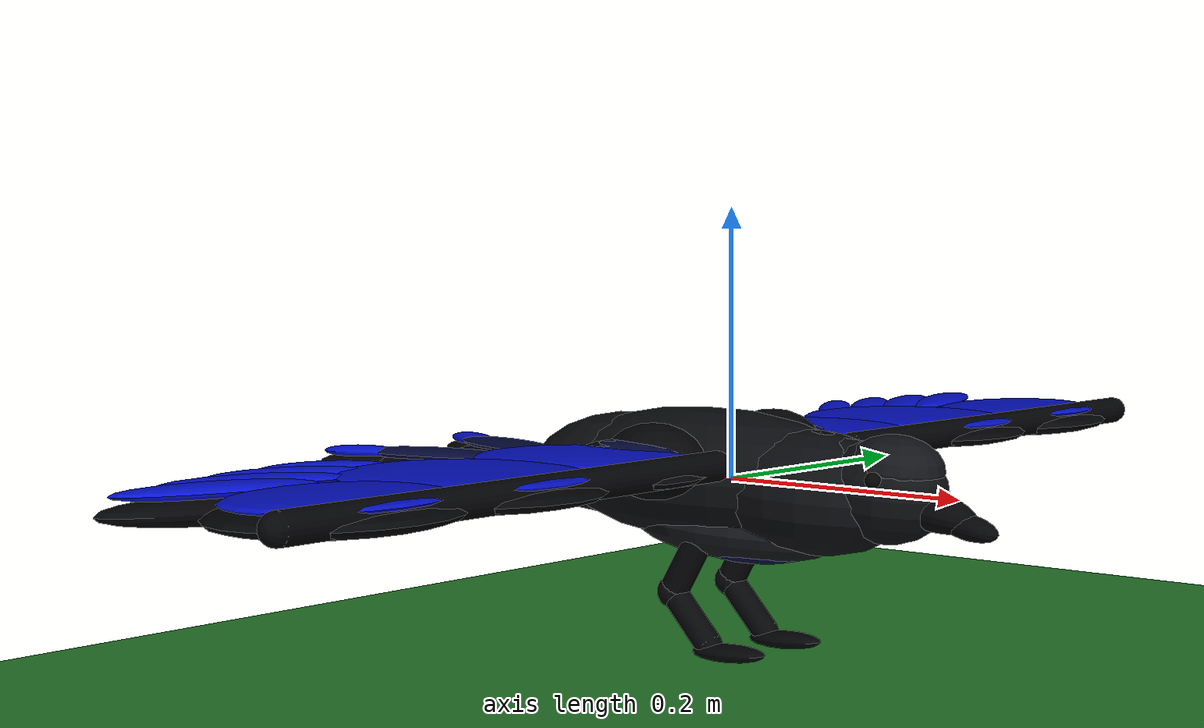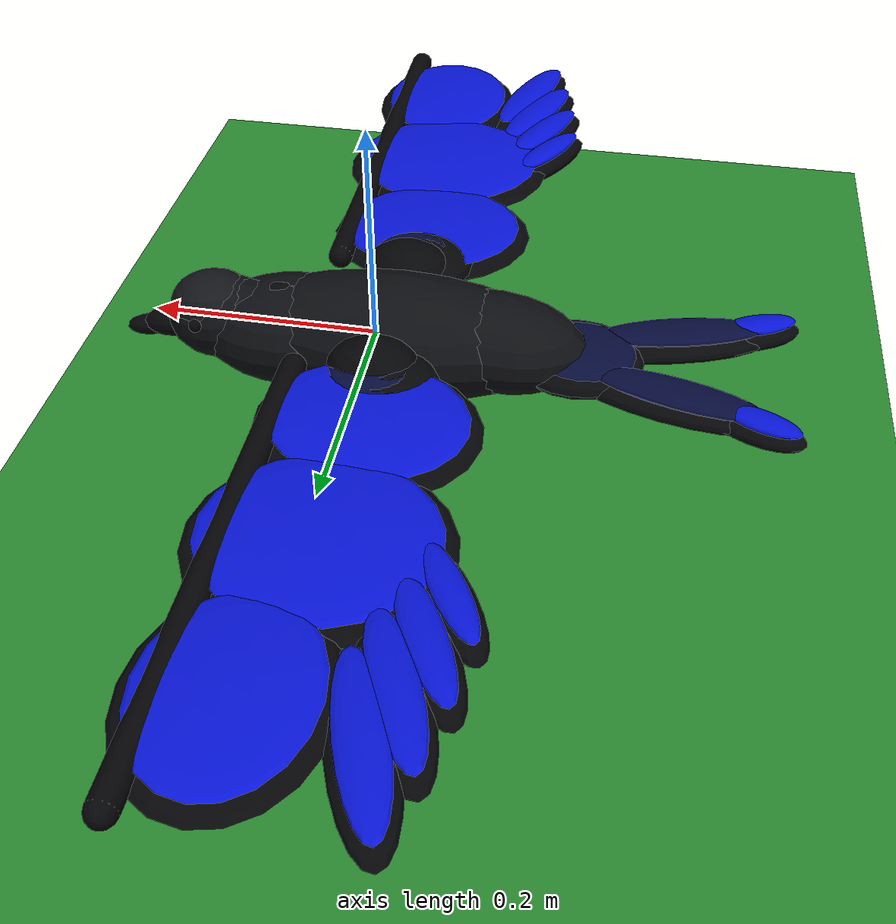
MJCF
<?xml version='1.0' encoding='UTF-8'?>
<mujoco model="bird_5dof_paper_scaled_tail_shoulders_crow_visual">
  <compiler angle="radian" autolimits="true" inertiafromgeom="false" balanceinertia="false"/>
  <!-- These atmospheric settings work when loaded directly in MuJoCo.
       In mjlab, set density, viscosity, wind, and has_fluid again in SimulationCfg. -->
  <option timestep="0.002" integrator="implicitfast" gravity="0 0 -9.81" density="1.225" viscosity="1.81e-5" wind="0 0 0"/>
  <statistic center="0 0 0" extent="1.15"/>
  <visual>
    <global azimuth="140" elevation="-20"/>
    <quality shadowsize="4096" offsamples="4"/>
    <headlight ambient="0.78 0.80 0.84" diffuse="0.92 0.94 0.98" specular="0.22 0.24 0.28"/>
    <rgba haze="0.94 0.97 1.00 1" fog="0.98 0.99 1.00 1"/>
  </visual>
  <asset>
    <texture name="sky" type="skybox" builtin="gradient" rgb1="0.48 0.76 1.00" rgb2="0.92 0.98 1.00" width="512" height="3072"/>
    <material name="base_green" rgba="0.10 0.48 0.32 1" specular="0.50" shininess="0.62"/>
    <material name="base_green_light" rgba="0.18 0.68 0.44 1" specular="0.48" shininess="0.58"/>
    <material name="wing_blue_shared" rgba="0.12 0.34 0.70 0.98" specular="0.48" shininess="0.60"/>
    <material name="purple_shared" rgba="0.035 0.090 0.220 1" specular="0.50" shininess="0.65"/>
    <material name="nose_dark" rgba="0.04 0.07 0.10 1" specular="0.52" shininess="0.70"/>
    <material name="invisible_visual" rgba="0 0 0 0" specular="0" shininess="0"/>
    <material name="vis_outline" rgba="0.010 0.012 0.020 1" specular="0.18" shininess="0.22"/>
    <material name="vis_body" rgba="0.045 0.050 0.062 1" specular="0.25" shininess="0.32"/>
    <material name="vis_body_soft" rgba="0.070 0.075 0.090 1" specular="0.22" shininess="0.28"/>
    <material name="vis_blue" rgba="0.025 0.075 0.820 1" specular="0.38" shininess="0.48"/>
    <material name="vis_blue_dark" rgba="0.020 0.040 0.220 1" specular="0.32" shininess="0.42"/>
    <material name="vis_leg" rgba="0.72 0.75 0.80 1" specular="0.18" shininess="0.24"/>
    <material name="vis_eye" rgba="0.003 0.003 0.006 1" specular="0.85" shininess="0.95"/>
    <material name="ground_green" rgba="0.16 0.52 0.18 1" specular="0.08" shininess="0.12"/>
  </asset>
  <default>
    <!-- All geoms are visual-only unless the collision class is used. -->
    <geom contype="0" conaffinity="0" friction="0.8 0.02 0.002" solref="0.004 1"/>
    <site rgba="0 0 0 0"/>
    <default class="collision">
      <geom contype="1" conaffinity="1" group="3" rgba="0 0 0 0"/>
    </default>
    <default class="flap_joint">
      <joint type="hinge" limited="true" range="-1.10 1.10" damping="0.004" armature="0.00008"/>
    </default>
    <default class="feather_joint">
      <joint type="hinge" limited="true" range="-0.70 0.70" damping="0.0015" armature="0.000015"/>
    </default>
    <default class="tail_joint">
      <joint type="hinge" limited="true" range="-0.6108652382 0.6108652382" damping="0.0020" armature="0.000020"/>
    </default>
  </default>
  <worldbody>
    <!-- Green ground plane. -->
    <geom name="ground" type="plane" pos="0 0 -0.150" size="8 8 0.10" material="ground_green" contype="1" conaffinity="1" friction="1.0 0.02 0.002"/>
    <light name="key_light" directional="true" pos="0 -2 3" dir="0.2 0.4 -1" diffuse="1.00 0.98 0.92" specular="0.30 0.30 0.30"/>
    <light name="fill_light" directional="true" pos="-1 2 2" dir="0.2 -0.5 -1" diffuse="0.60 0.75 1.00" specular="0.12 0.16 0.22"/>
    <body name="bird" pos="0 0 0">
      <freejoint name="root"/>
      <!-- Far third-person camera rigidly attached to the bird base. -->
      <camera name="bird_chase_camera" mode="fixed" pos="-0.95 0 0.30" xyaxes="0 -1 0  0.27 0 0.962860"/>
      <inertial pos="-0.010 0 0" mass="0.260" diaginertia="0.00072222 0.00308148 0.00322593"/>
      <!-- The only collision geom in the complete robot. -->
      <geom name="base_collision" class="collision" type="ellipsoid" pos="-0.005 0 0" size="0.155 0.072 0.058"/>
      <!-- Decorative primitive shell. All geoms below are visual-only. -->
      <!-- Simple aerodynamic ellipsoid for the main body. -->
      <geom name="base_body_aero" type="ellipsoid" pos="-0.005 0 0" size="0.155 0.072 0.058" material="invisible_visual" fluidshape="ellipsoid" fluidcoef="0.50 0.25 1.50 1.00 1.00" rgba="0 0 0 0" group="4"/>
      <!-- Decorative body details; no collision and no separate fluid model. -->
      <geom name="base_top" type="ellipsoid" pos="-0.015 0 0.026" size="0.098 0.061 0.031" material="invisible_visual" rgba="0 0 0 0" group="4"/>
      <geom name="belly_accent" type="ellipsoid" pos="-0.015 0 -0.027" size="0.082 0.050 0.018" material="invisible_visual" rgba="0 0 0 0" group="4"/>
      <geom name="nose" type="capsule" material="invisible_visual" fromto="0.115 0 0.003  0.198 0 -0.008" size="0.021" rgba="0 0 0 0" group="4"/>
      <!-- Invisible sites for IMU and debugging. -->
      <geom name="vis_body_core" type="ellipsoid" material="vis_body" contype="0" conaffinity="0" group="1" fluidshape="none" pos="-0.020 0 0.002" size="0.145 0.064 0.050"/>
      <geom name="vis_body_chest" type="ellipsoid" material="vis_body" contype="0" conaffinity="0" group="1" fluidshape="none" pos="0.072 0 -0.004" size="0.086 0.057 0.045" euler="0 0.05 0"/>
      <geom name="vis_body_rear" type="ellipsoid" material="vis_body" contype="0" conaffinity="0" group="1" fluidshape="none" pos="-0.105 0 0.005" size="0.082 0.052 0.039" euler="0 -0.10 0"/>
      <geom name="vis_body_belly" type="ellipsoid" material="vis_body_soft" contype="0" conaffinity="0" group="1" fluidshape="none" pos="0.005 0 -0.035" size="0.092 0.049 0.024" euler="0 0.04 0"/>
      <geom name="vis_back_bridge" type="capsule" material="vis_outline" contype="0" conaffinity="0" group="1" fluidshape="none" fromto="-0.120 0 0.026  0.085 0 0.027" size="0.014"/>
      <geom name="vis_belly_blue" type="ellipsoid" material="vis_blue_dark" contype="0" conaffinity="0" group="1" fluidshape="none" pos="0.024 0 -0.050" size="0.047 0.034 0.010"/>
      <geom name="vis_neck" type="capsule" material="vis_body" contype="0" conaffinity="0" group="1" fluidshape="none" fromto="0.074 0 0.004  0.137 0 0.001" size="0.034"/>
      <geom name="vis_head" type="ellipsoid" material="vis_body" contype="0" conaffinity="0" group="1" fluidshape="none" pos="0.137 0 0.001" size="0.050 0.039 0.037" euler="0 0.08 0"/>
      <geom name="vis_head_crown" type="ellipsoid" material="vis_body_soft" contype="0" conaffinity="0" group="1" fluidshape="none" pos="0.147 0 0.018" size="0.036 0.033 0.024" euler="0 0.10 0"/>
      <geom name="vis_beak_outline_main" type="ellipsoid" material="vis_outline" contype="0" conaffinity="0" group="1" fluidshape="none" pos="0.176 0 -0.009" size="0.039 0.017 0.014" euler="0 0.18 0"/>
      <geom name="vis_beak_blue_main" type="ellipsoid" material="vis_blue" contype="0" conaffinity="0" group="1" fluidshape="none" pos="0.177 0 -0.009" size="0.034 0.013 0.010" euler="0 0.18 0"/>
      <geom name="vis_beak_outline_tip" type="ellipsoid" material="vis_outline" contype="0" conaffinity="0" group="1" fluidshape="none" pos="0.207 0 -0.018" size="0.024 0.011 0.009" euler="0 0.18 0"/>
      <geom name="vis_beak_blue_tip" type="ellipsoid" material="vis_blue" contype="0" conaffinity="0" group="1" fluidshape="none" pos="0.208 0 -0.019" size="0.020 0.007 0.006" euler="0 0.18 0"/>
      <geom name="vis_eye_left" type="sphere" material="vis_eye" contype="0" conaffinity="0" group="1" fluidshape="none" pos="0.151 0.034 0.013" size="0.006"/>
      <geom name="vis_eye_right" type="sphere" material="vis_eye" contype="0" conaffinity="0" group="1" fluidshape="none" pos="0.151 -0.034 0.013" size="0.006"/>
      <geom name="vis_left_leg_upper_outline" type="capsule" material="vis_outline" contype="0" conaffinity="0" group="1" fluidshape="none" fromto="0.000 0.034 -0.037  -0.028 0.034 -0.083" size="0.011"/>
      <geom name="vis_left_leg_upper" type="capsule" material="vis_leg" contype="0" conaffinity="0" group="1" fluidshape="none" fromto="0.000 0.034 -0.037  -0.028 0.034 -0.083" size="0.007"/>
      <geom name="vis_left_leg_lower_outline" type="capsule" material="vis_outline" contype="0" conaffinity="0" group="1" fluidshape="none" fromto="-0.028 0.034 -0.083  0.006 0.034 -0.119" size="0.010"/>
      <geom name="vis_left_leg_lower" type="capsule" material="vis_leg" contype="0" conaffinity="0" group="1" fluidshape="none" fromto="-0.028 0.034 -0.083  0.006 0.034 -0.119" size="0.006"/>
      <geom name="vis_left_knee" type="sphere" material="vis_outline" contype="0" conaffinity="0" group="1" fluidshape="none" pos="-0.028 0.034 -0.083" size="0.012"/>
      <geom name="vis_left_foot_outline" type="ellipsoid" material="vis_outline" contype="0" conaffinity="0" group="1" fluidshape="none" pos="0.024 0.034 -0.123" size="0.032 0.014 0.0065" euler="0 -0.04 0"/>
      <geom name="vis_left_foot" type="ellipsoid" material="vis_blue" contype="0" conaffinity="0" group="1" fluidshape="none" pos="0.027 0.034 -0.123" size="0.027 0.0105 0.0040" euler="0 -0.04 0"/>
      <geom name="vis_right_leg_upper_outline" type="capsule" material="vis_outline" contype="0" conaffinity="0" group="1" fluidshape="none" fromto="0.000 -0.034 -0.037  -0.028 -0.034 -0.083" size="0.011"/>
      <geom name="vis_right_leg_upper" type="capsule" material="vis_leg" contype="0" conaffinity="0" group="1" fluidshape="none" fromto="0.000 -0.034 -0.037  -0.028 -0.034 -0.083" size="0.007"/>
      <geom name="vis_right_leg_lower_outline" type="capsule" material="vis_outline" contype="0" conaffinity="0" group="1" fluidshape="none" fromto="-0.028 -0.034 -0.083  0.006 -0.034 -0.119" size="0.010"/>
      <geom name="vis_right_leg_lower" type="capsule" material="vis_leg" contype="0" conaffinity="0" group="1" fluidshape="none" fromto="-0.028 -0.034 -0.083  0.006 -0.034 -0.119" size="0.006"/>
      <geom name="vis_right_knee" type="sphere" material="vis_outline" contype="0" conaffinity="0" group="1" fluidshape="none" pos="-0.028 -0.034 -0.083" size="0.012"/>
      <geom name="vis_right_foot_outline" type="ellipsoid" material="vis_outline" contype="0" conaffinity="0" group="1" fluidshape="none" pos="0.024 -0.034 -0.123" size="0.032 0.014 0.0065" euler="0 -0.04 0"/>
      <geom name="vis_right_foot" type="ellipsoid" material="vis_blue" contype="0" conaffinity="0" group="1" fluidshape="none" pos="0.027 -0.034 -0.123" size="0.027 0.0105 0.0040" euler="0 -0.04 0"/>
      <site name="imu_site" type="sphere" pos="-0.005 0 0.030" size="0.006"/>
      <site name="base_com_site" type="sphere" pos="-0.010 0 0" size="0.006"/>
      <!-- LEFT WING                                                     -->
      <!-- Positive left_flap raises the left wing.                      -->
      <!-- Positive feather raises the leading edge.                     -->
      <body name="left_flap_frame" pos="-0.015 0.050 0.018">
        <joint name="left_flap" class="flap_joint" axis="1 0 0"/>
        <inertial pos="0 0.018 0" mass="0.005" diaginertia="0.000006 0.000006 0.000006"/>
        <!--
          Small explicit shoulder aerodynamic volume.
          Invisible and non-colliding; prevents MuJoCo from inferring
          flap-frame fluid forces from the frame inertia.
        -->
        <geom name="left_shoulder_aero" type="ellipsoid" pos="0 0.018 0" size="0.035 0.025 0.020" rgba="0 0 0 0" group="4" fluidshape="ellipsoid" fluidcoef="0.50 0.25 1.50 1.00 1.00" material="invisible_visual"/>
        <geom name="vis_left_shoulder_outer" type="ellipsoid" material="vis_outline" contype="0" conaffinity="0" group="1" fluidshape="none" pos="0 0.021 0" size="0.040 0.033 0.028"/>
        <geom name="vis_left_shoulder_blue" type="ellipsoid" material="vis_blue_dark" contype="0" conaffinity="0" group="1" fluidshape="none" pos="0.002 0.022 0.002" size="0.032 0.026 0.021"/>
        <geom name="vis_left_hinge_cap" type="capsule" material="vis_outline" contype="0" conaffinity="0" group="1" fluidshape="none" fromto="-0.023 0.020 0  0.023 0.020 0" size="0.015"/>
        <geom name="vis_left_hinge_blue" type="capsule" material="vis_blue" contype="0" conaffinity="0" group="1" fluidshape="none" fromto="-0.019 0.020 0  0.019 0.020 0" size="0.010"/>
        <body name="left_wing" pos="0 0.012 0">
          <joint name="left_feather" class="feather_joint" axis="0 -1 0" range="-1.2217304764 1.2217304764"/>
          <geom name="left_root_plate" type="box" pos="-0.005 0.018 0" size="0.040 0.034 0.012" material="invisible_visual" rgba="0 0 0 0" group="4"/>
          <!--
            Corrected wing geometry:
              total outer-tip wingspan = 0.995 m
              elliptical mean chord ≈ 0.170 m
          -->
          <inertial pos="-0.020 0.21175 0.000" mass="0.015" diaginertia="0.00025451 0.00004383 0.00029406"/>
          <geom name="left_wing_aero" type="ellipsoid" pos="-0.020 0.21175 0.000" size="0.108225 0.22375 0.012" material="invisible_visual" fluidshape="ellipsoid" fluidcoef="0.20 0.12 1.50 3.14 1.00" rgba="0 0 0 0" group="4"/>
          <geom name="vis_left_wing_panel_root_outline" type="ellipsoid" material="vis_outline" contype="0" conaffinity="0" group="1" fluidshape="none" pos="-0.010 0.074 -0.003" size="0.092 0.078 0.011" euler="0 0 -0.100"/>
          <geom name="vis_left_wing_panel_root_blue" type="ellipsoid" material="vis_blue" contype="0" conaffinity="0" group="1" fluidshape="none" pos="-0.010 0.074 0.007" size="0.082 0.068 0.006" euler="0 0 -0.100"/>
          <geom name="vis_left_wing_mid_outline" type="ellipsoid" material="vis_outline" contype="0" conaffinity="0" group="1" fluidshape="none" pos="-0.004 0.198 -0.003" size="0.100 0.090 0.011" euler="0 0 -0.050"/>
          <geom name="vis_left_wing_mid_blue" type="ellipsoid" material="vis_blue" contype="0" conaffinity="0" group="1" fluidshape="none" pos="-0.004 0.198 0.007" size="0.090 0.080 0.006" euler="0 0 -0.050"/>
          <geom name="vis_left_wing_outer_outline" type="ellipsoid" material="vis_outline" contype="0" conaffinity="0" group="1" fluidshape="none" pos="0.020 0.330 -0.003" size="0.073 0.088 0.011" euler="0 0 0.020"/>
          <geom name="vis_left_wing_outer_blue" type="ellipsoid" material="vis_blue" contype="0" conaffinity="0" group="1" fluidshape="none" pos="0.020 0.330 0.007" size="0.063 0.078 0.006" euler="0 0 0.020"/>
          <geom name="vis_left_leading_edge" type="capsule" material="vis_outline" contype="0" conaffinity="0" group="1" fluidshape="none" fromto="0.065 0.018 0.002  0.066 0.417 0.002" size="0.011"/>
          <geom name="vis_left_primary_1_outline" type="ellipsoid" material="vis_outline" contype="0" conaffinity="0" group="1" fluidshape="none" pos="-0.070 0.350 -0.005" size="0.078 0.024 0.010" euler="0 0 1.900"/>
          <geom name="vis_left_primary_1_blue" type="ellipsoid" material="vis_blue" contype="0" conaffinity="0" group="1" fluidshape="none" pos="-0.070 0.350 0.007" size="0.069 0.018 0.0055" euler="0 0 1.900"/>
          <geom name="vis_left_primary_2_outline" type="ellipsoid" material="vis_outline" contype="0" conaffinity="0" group="1" fluidshape="none" pos="-0.082 0.310 -0.005" size="0.073 0.023 0.010" euler="0 0 1.970"/>
          <geom name="vis_left_primary_2_blue" type="ellipsoid" material="vis_blue" contype="0" conaffinity="0" group="1" fluidshape="none" pos="-0.082 0.310 0.007" size="0.064 0.017 0.0055" euler="0 0 1.970"/>
          <geom name="vis_left_primary_3_outline" type="ellipsoid" material="vis_outline" contype="0" conaffinity="0" group="1" fluidshape="none" pos="-0.093 0.270 -0.005" size="0.066 0.021 0.010" euler="0 0 2.040"/>
          <geom name="vis_left_primary_3_blue" type="ellipsoid" material="vis_blue" contype="0" conaffinity="0" group="1" fluidshape="none" pos="-0.093 0.270 0.007" size="0.057 0.015 0.0055" euler="0 0 2.040"/>
          <geom name="vis_left_primary_4_outline" type="ellipsoid" material="vis_outline" contype="0" conaffinity="0" group="1" fluidshape="none" pos="-0.102 0.230 -0.005" size="0.057 0.019 0.010" euler="0 0 2.100"/>
          <geom name="vis_left_primary_4_blue" type="ellipsoid" material="vis_blue" contype="0" conaffinity="0" group="1" fluidshape="none" pos="-0.102 0.230 0.007" size="0.048 0.013 0.0055" euler="0 0 2.100"/>
          <geom name="vis_left_wing_root_outline" type="ellipsoid" material="vis_outline" contype="0" conaffinity="0" group="1" fluidshape="none" pos="-0.008 0.024 0" size="0.050 0.043 0.017"/>
          <geom name="vis_left_wing_root_blue" type="ellipsoid" material="vis_blue_dark" contype="0" conaffinity="0" group="1" fluidshape="none" pos="-0.006 0.025 0.006" size="0.042 0.035 0.011"/>
          <site name="left_wing_root_site" type="sphere" pos="0 0.010 0" size="0.005"/>
          <site name="left_wing_center_site" type="sphere" pos="-0.020 0.21175 0" size="0.005"/>
          <site name="left_wing_tip_site" type="sphere" pos="-0.020 0.43550 0" size="0.005"/>
        </body>
      </body>
      <!-- RIGHT WING                                                    -->
      <!-- Positive right_flap raises the right wing.                    -->
      <!-- Positive feather raises the leading edge.                     -->
      <body name="right_flap_frame" pos="-0.015 -0.050 0.018">
        <joint name="right_flap" class="flap_joint" axis="-1 0 0"/>
        <inertial pos="0 -0.018 0" mass="0.005" diaginertia="0.000006 0.000006 0.000006"/>
        <!--
          Small explicit shoulder aerodynamic volume.
          Invisible and non-colliding; prevents MuJoCo from inferring
          flap-frame fluid forces from the frame inertia.
        -->
        <geom name="right_shoulder_aero" type="ellipsoid" pos="0 -0.018 0" size="0.035 0.025 0.020" rgba="0 0 0 0" group="4" fluidshape="ellipsoid" fluidcoef="0.50 0.25 1.50 1.00 1.00" material="invisible_visual"/>
        <geom name="vis_right_shoulder_outer" type="ellipsoid" material="vis_outline" contype="0" conaffinity="0" group="1" fluidshape="none" pos="0 -0.021 0" size="0.040 0.033 0.028"/>
        <geom name="vis_right_shoulder_blue" type="ellipsoid" material="vis_blue_dark" contype="0" conaffinity="0" group="1" fluidshape="none" pos="0.002 -0.022 0.002" size="0.032 0.026 0.021"/>
        <geom name="vis_right_hinge_cap" type="capsule" material="vis_outline" contype="0" conaffinity="0" group="1" fluidshape="none" fromto="-0.023 -0.020 0  0.023 -0.020 0" size="0.015"/>
        <geom name="vis_right_hinge_blue" type="capsule" material="vis_blue" contype="0" conaffinity="0" group="1" fluidshape="none" fromto="-0.019 -0.020 0  0.019 -0.020 0" size="0.010"/>
        <body name="right_wing" pos="0 -0.012 0">
          <joint name="right_feather" class="feather_joint" axis="0 -1 0" range="-1.2217304764 1.2217304764"/>
          <geom name="right_root_plate" type="box" pos="-0.005 -0.018 0" size="0.040 0.034 0.012" material="invisible_visual" rgba="0 0 0 0" group="4"/>
          <inertial pos="-0.020 -0.21175 0.000" mass="0.015" diaginertia="0.00025451 0.00004383 0.00029406"/>
          <geom name="right_wing_aero" type="ellipsoid" pos="-0.020 -0.21175 0.000" size="0.108225 0.22375 0.012" material="invisible_visual" fluidshape="ellipsoid" fluidcoef="0.20 0.12 1.50 3.14 1.00" rgba="0 0 0 0" group="4"/>
          <geom name="vis_right_wing_panel_root_outline" type="ellipsoid" material="vis_outline" contype="0" conaffinity="0" group="1" fluidshape="none" pos="-0.010 -0.074 -0.003" size="0.092 0.078 0.011" euler="0 0 0.100"/>
          <geom name="vis_right_wing_panel_root_blue" type="ellipsoid" material="vis_blue" contype="0" conaffinity="0" group="1" fluidshape="none" pos="-0.010 -0.074 0.007" size="0.082 0.068 0.006" euler="0 0 0.100"/>
          <geom name="vis_right_wing_mid_outline" type="ellipsoid" material="vis_outline" contype="0" conaffinity="0" group="1" fluidshape="none" pos="-0.004 -0.198 -0.003" size="0.100 0.090 0.011" euler="0 0 0.050"/>
          <geom name="vis_right_wing_mid_blue" type="ellipsoid" material="vis_blue" contype="0" conaffinity="0" group="1" fluidshape="none" pos="-0.004 -0.198 0.007" size="0.090 0.080 0.006" euler="0 0 0.050"/>
          <geom name="vis_right_wing_outer_outline" type="ellipsoid" material="vis_outline" contype="0" conaffinity="0" group="1" fluidshape="none" pos="0.020 -0.330 -0.003" size="0.073 0.088 0.011" euler="0 0 -0.020"/>
          <geom name="vis_right_wing_outer_blue" type="ellipsoid" material="vis_blue" contype="0" conaffinity="0" group="1" fluidshape="none" pos="0.020 -0.330 0.007" size="0.063 0.078 0.006" euler="0 0 -0.020"/>
          <geom name="vis_right_leading_edge" type="capsule" material="vis_outline" contype="0" conaffinity="0" group="1" fluidshape="none" fromto="0.065 -0.018 0.002  0.066 -0.417 0.002" size="0.011"/>
          <geom name="vis_right_primary_1_outline" type="ellipsoid" material="vis_outline" contype="0" conaffinity="0" group="1" fluidshape="none" pos="-0.070 -0.350 -0.005" size="0.078 0.024 0.010" euler="0 0 -1.900"/>
          <geom name="vis_right_primary_1_blue" type="ellipsoid" material="vis_blue" contype="0" conaffinity="0" group="1" fluidshape="none" pos="-0.070 -0.350 0.007" size="0.069 0.018 0.0055" euler="0 0 -1.900"/>
          <geom name="vis_right_primary_2_outline" type="ellipsoid" material="vis_outline" contype="0" conaffinity="0" group="1" fluidshape="none" pos="-0.082 -0.310 -0.005" size="0.073 0.023 0.010" euler="0 0 -1.970"/>
          <geom name="vis_right_primary_2_blue" type="ellipsoid" material="vis_blue" contype="0" conaffinity="0" group="1" fluidshape="none" pos="-0.082 -0.310 0.007" size="0.064 0.017 0.0055" euler="0 0 -1.970"/>
          <geom name="vis_right_primary_3_outline" type="ellipsoid" material="vis_outline" contype="0" conaffinity="0" group="1" fluidshape="none" pos="-0.093 -0.270 -0.005" size="0.066 0.021 0.010" euler="0 0 -2.040"/>
          <geom name="vis_right_primary_3_blue" type="ellipsoid" material="vis_blue" contype="0" conaffinity="0" group="1" fluidshape="none" pos="-0.093 -0.270 0.007" size="0.057 0.015 0.0055" euler="0 0 -2.040"/>
          <geom name="vis_right_primary_4_outline" type="ellipsoid" material="vis_outline" contype="0" conaffinity="0" group="1" fluidshape="none" pos="-0.102 -0.230 -0.005" size="0.057 0.019 0.010" euler="0 0 -2.100"/>
          <geom name="vis_right_primary_4_blue" type="ellipsoid" material="vis_blue" contype="0" conaffinity="0" group="1" fluidshape="none" pos="-0.102 -0.230 0.007" size="0.048 0.013 0.0055" euler="0 0 -2.100"/>
          <geom name="vis_right_wing_root_outline" type="ellipsoid" material="vis_outline" contype="0" conaffinity="0" group="1" fluidshape="none" pos="-0.008 -0.024 0" size="0.050 0.043 0.017"/>
          <geom name="vis_right_wing_root_blue" type="ellipsoid" material="vis_blue_dark" contype="0" conaffinity="0" group="1" fluidshape="none" pos="-0.006 -0.025 0.006" size="0.042 0.035 0.011"/>
          <site name="right_wing_root_site" type="sphere" pos="0 -0.010 0" size="0.005"/>
          <site name="right_wing_center_site" type="sphere" pos="-0.020 -0.21175 0" size="0.005"/>
          <site name="right_wing_tip_site" type="sphere" pos="-0.020 -0.43550 0" size="0.005"/>
        </body>
      </body>
      <!-- ACTUATED TAIL                                                 -->
      <!-- Positive tail_pitch raises the front/leading edge.            -->
      <body name="tail" pos="-0.145 0 -0.004">
        <joint name="tail_pitch" class="tail_joint" axis="0 -1 0"/>
        <inertial pos="-0.080 0 0" mass="0.010" diaginertia="0.00002658 0.00001633 0.00004265"/>
        <geom name="tail_aero" type="ellipsoid" pos="-0.080 0 0" size="0.090 0.115 0.008" material="invisible_visual" fluidshape="ellipsoid" fluidcoef="0.20 0.12 1.50 3.14 1.00" rgba="0 0 0 0" group="4"/>
        <geom name="vis_tail_root_outline" type="ellipsoid" material="vis_outline" contype="0" conaffinity="0" group="1" fluidshape="none" pos="-0.032 0 -0.001" size="0.057 0.051 0.014"/>
        <geom name="vis_tail_root_blue" type="ellipsoid" material="vis_blue_dark" contype="0" conaffinity="0" group="1" fluidshape="none" pos="-0.035 0 0.006" size="0.047 0.041 0.008"/>
        <geom name="vis_tail_left_outline" type="ellipsoid" material="vis_outline" contype="0" conaffinity="0" group="1" fluidshape="none" pos="-0.110 0.038 -0.003" size="0.090 0.027 0.010" euler="0 0 -0.24"/>
        <geom name="vis_tail_left_blue" type="ellipsoid" material="vis_blue_dark" contype="0" conaffinity="0" group="1" fluidshape="none" pos="-0.118 0.041 0.007" size="0.075 0.019 0.0055" euler="0 0 -0.24"/>
        <geom name="vis_tail_left_tip_outline" type="ellipsoid" material="vis_outline" contype="0" conaffinity="0" group="1" fluidshape="none" pos="-0.182 0.061 -0.003" size="0.042 0.019 0.009" euler="0 0 -0.38"/>
        <geom name="vis_tail_left_tip_blue" type="ellipsoid" material="vis_blue" contype="0" conaffinity="0" group="1" fluidshape="none" pos="-0.185 0.063 0.007" size="0.034 0.013 0.005" euler="0 0 -0.38"/>
        <geom name="vis_tail_right_outline" type="ellipsoid" material="vis_outline" contype="0" conaffinity="0" group="1" fluidshape="none" pos="-0.110 -0.038 -0.003" size="0.090 0.027 0.010" euler="0 0 0.24"/>
        <geom name="vis_tail_right_blue" type="ellipsoid" material="vis_blue_dark" contype="0" conaffinity="0" group="1" fluidshape="none" pos="-0.118 -0.041 0.007" size="0.075 0.019 0.0055" euler="0 0 0.24"/>
        <geom name="vis_tail_right_tip_outline" type="ellipsoid" material="vis_outline" contype="0" conaffinity="0" group="1" fluidshape="none" pos="-0.182 -0.061 -0.003" size="0.042 0.019 0.009" euler="0 0 0.38"/>
        <geom name="vis_tail_right_tip_blue" type="ellipsoid" material="vis_blue" contype="0" conaffinity="0" group="1" fluidshape="none" pos="-0.185 -0.063 0.007" size="0.034 0.013 0.005" euler="0 0 0.38"/>
        <site name="tail_hinge_site" type="sphere" pos="0 0 0" size="0.005"/>
        <site name="tail_center_site" type="sphere" pos="-0.080 0 0" size="0.005"/>
        <site name="tail_tip_site" type="sphere" pos="-0.170 0 0" size="0.005"/>
      </body>
    </body>
  </worldbody>
  <!-- Starter position servos for direct MuJoCo testing and mjlab actions. -->
  <actuator>
    <position name="left_flap_act" joint="left_flap" kp="6.000" kv="0.120" ctrllimited="true" ctrlrange="-1.10 1.10" forcelimited="true" forcerange="-5.000 5.000"/>
    <position name="left_feather_act" joint="left_feather" kp="1.500" kv="0.015" ctrllimited="true" ctrlrange="-1.2217304764 1.2217304764" forcelimited="true" forcerange="-2.000 2.000"/>
    <position name="right_flap_act" joint="right_flap" kp="6.000" kv="0.120" ctrllimited="true" ctrlrange="-1.10 1.10" forcelimited="true" forcerange="-5.000 5.000"/>
    <position name="right_feather_act" joint="right_feather" kp="1.500" kv="0.015" ctrllimited="true" ctrlrange="-1.2217304764 1.2217304764" forcelimited="true" forcerange="-2.000 2.000"/>
    <position name="tail_pitch_act" joint="tail_pitch" kp="1.500" kv="0.020" ctrllimited="true" ctrlrange="-0.6108652382 0.6108652382" forcelimited="true" forcerange="-1.500 1.500"/>
  </actuator>
  <sensor>
    <!-- IMU measurements. -->
    <gyro name="imu_gyro" site="imu_site"/>
    <accelerometer name="imu_accelerometer" site="imu_site"/>
    <!-- Floating-base orientation quaternion in world coordinates: w x y z. -->
    <framequat name="bird_orientation_quat" objtype="body" objname="bird"/>
    <!-- Wing joint measurements. -->
    <jointpos name="left_flap_pos" joint="left_flap"/>
    <jointvel name="left_flap_vel" joint="left_flap"/>
    <jointpos name="left_feather_pos" joint="left_feather"/>
    <jointvel name="left_feather_vel" joint="left_feather"/>
    <jointpos name="right_flap_pos" joint="right_flap"/>
    <jointvel name="right_flap_vel" joint="right_flap"/>
    <jointpos name="right_feather_pos" joint="right_feather"/>
    <jointvel name="right_feather_vel" joint="right_feather"/>
    <!-- Tail joint measurements. -->
    <jointpos name="tail_pitch_pos" joint="tail_pitch"/>
    <jointvel name="tail_pitch_vel" joint="tail_pitch"/>
  </sensor>
</mujoco>
